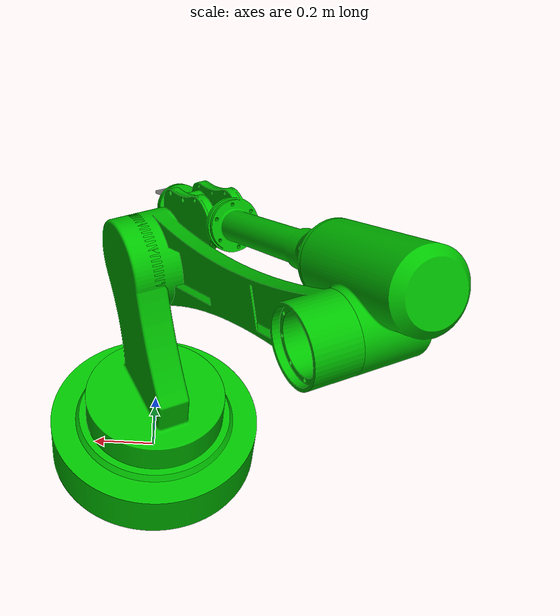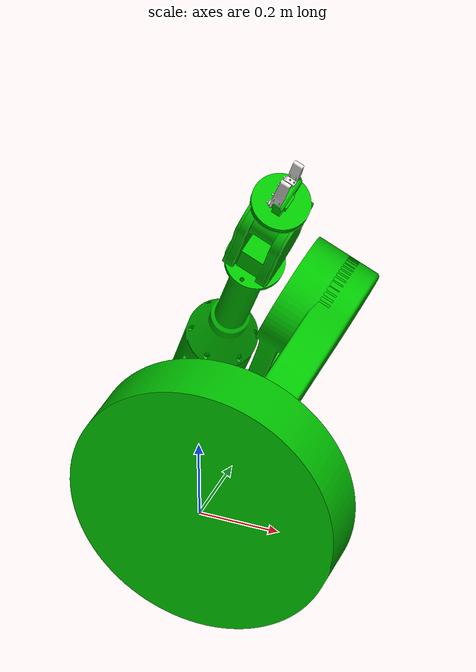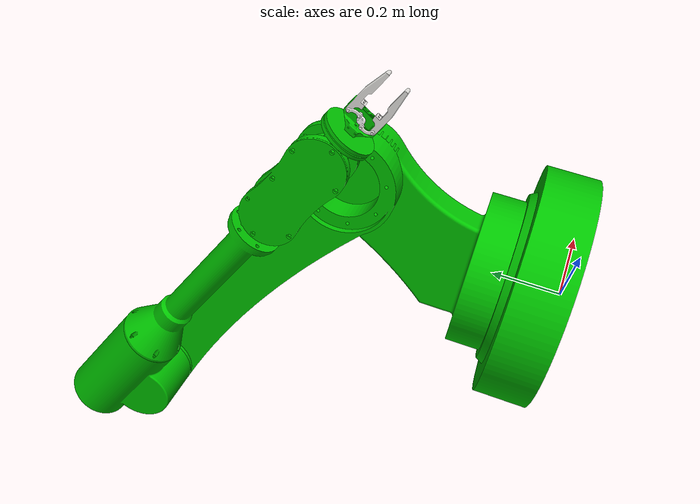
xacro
<?xml version="1.0"?>
<robot xmlns:xacro="http://www.ros.org/wiki/xacro" name="Assem1">

  <!-- Materials (shared across all assemblies) -->
  <material name="Steel">
    <color rgba="0.000 0.753 0.000 1.0"/>
  </material>
  <material name="Generico">
    <color rgba="0.878 0.875 0.859 1.0"/>
  </material>
  <material name="material">
    <color rgba="0.961 0.961 0.965 1.0"/>
  </material>

  <!-- Assembly includes -->
  <xacro:include filename="$(find Assem1_description)/urdf/assemblies/griper.urdf.xacro"/>
  <xacro:include filename="$(find Assem1_description)/urdf/assemblies/Assem1.urdf.xacro"/>

  <!-- Instantiate assemblies -->
  <xacro:griper prefix=""/>
  <xacro:Assem1 prefix=""/>

  <!-- Mount joints (cross-assembly connections) -->
  <!-- These define how assemblies connect to each other. -->
  <!-- When swapping a dummy assembly with a real part, -->
  <!-- update the include + macro call above, and adjust -->
  <!-- parent/child link names in the mount joint below. -->

  <joint name="griper_joint" type="fixed">
    <parent link="Part02"/>
    <child link="led_base"/>
    <origin xyz="-0.152521 0.007500 0.024300" rpy="3.141593 -0.000000 -1.570796"/>
  </joint>

</robot>

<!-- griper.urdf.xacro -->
<robot xmlns:xacro="http://www.ros.org/wiki/xacro" name="griper_macro">

  <xacro:macro name="griper" params="prefix">

    <!-- Links -->
    <link name="${prefix}led_base">
      <inertial>
        <origin xyz="0.014027 0.006699 0.016421" rpy="0 0 0"/>
        <mass value="0.303692"/>
        <inertia ixx="8.300206e-05" ixy="-6.874604e-06" ixz="5.194899e-06"
                 iyy="1.571638e-04" iyz="6.920922e-06" izz="1.945885e-04"/>
      </inertial>
      <visual>
        <origin xyz="0.000000 0.000000 0.000000" rpy="0 0 0"/>
        <geometry>
          <mesh filename="package://Assem1_description/meshes/griper/led_base.dae" scale="1 1 1"/>
        </geometry>
        <material name="Steel"/>
      </visual>
      <collision>
        <origin xyz="0.000000 0.000000 0.000000" rpy="0 0 0"/>
        <geometry>
          <mesh filename="package://Assem1_description/meshes/griper/led_base_collision.stl" scale="0.01 0.01 0.01"/>
        </geometry>
      </collision>
    </link>

    <link name="${prefix}servo_mount">
      <inertial>
        <origin xyz="-0.000000 0.002881 -0.000000" rpy="0 0 0"/>
        <mass value="0.012073"/>
        <inertia ixx="1.000000e-06" ixy="-7.046030e-14" ixz="-1.289899e-07"
                 iyy="1.000000e-06" iyz="2.433932e-14" izz="1.000000e-06"/>
      </inertial>
      <visual>
        <origin xyz="-0.010000 -0.024700 0.000000" rpy="0 0 0"/>
        <geometry>
          <mesh filename="package://Assem1_description/meshes/griper/servo_mount.dae" scale="1 1 1"/>
        </geometry>
        <material name="material"/>
      </visual>
      <collision>
        <origin xyz="-0.010000 -0.024700 0.000000" rpy="0 0 0"/>
        <geometry>
          <mesh filename="package://Assem1_description/meshes/griper/servo_mount_collision.stl" scale="0.01 0.01 0.01"/>
        </geometry>
      </collision>
    </link>

    <link name="${prefix}right_pivot">
      <inertial>
        <origin xyz="0.006957 0.000935 0.002918" rpy="0 0 0"/>
        <mass value="0.003905"/>
        <inertia ixx="1.000000e-06" ixy="-2.936949e-08" ixz="1.136656e-08"
                 iyy="1.000000e-06" iyz="1.527936e-09" izz="1.000000e-06"/>
      </inertial>
      <visual>
        <origin xyz="0.015000 0.000000 0.002500" rpy="0 0 0"/>
        <geometry>
          <mesh filename="package://Assem1_description/meshes/griper/right_pivot.dae" scale="1 1 1"/>
        </geometry>
        <material name="Generico"/>
      </visual>
      <collision>
        <origin xyz="0.015000 0.000000 0.002500" rpy="0 0 0"/>
        <geometry>
          <mesh filename="package://Assem1_description/meshes/griper/right_pivot_collision.stl" scale="0.01 0.01 0.01"/>
        </geometry>
      </collision>
    </link>

    <link name="${prefix}left_pivot">
      <inertial>
        <origin xyz="0.006957 0.000935 -0.001082" rpy="0 0 0"/>
        <mass value="0.003905"/>
        <inertia ixx="1.000000e-06" ixy="-2.936949e-08" ixz="1.136656e-08"
                 iyy="1.000000e-06" iyz="1.527936e-09" izz="1.000000e-06"/>
      </inertial>
      <visual>
        <origin xyz="0.015000 -0.000000 -0.001500" rpy="0 0 0"/>
        <geometry>
          <mesh filename="package://Assem1_description/meshes/griper/left_pivot.dae" scale="1 1 1"/>
        </geometry>
        <material name="Generico"/>
      </visual>
      <collision>
        <origin xyz="0.015000 -0.000000 -0.001500" rpy="0 0 0"/>
        <geometry>
          <mesh filename="package://Assem1_description/meshes/griper/left_pivot_collision.stl" scale="0.01 0.01 0.01"/>
        </geometry>
      </collision>
    </link>

    <link name="${prefix}acc_right_gripper">
      <inertial>
        <origin xyz="-0.004275 0.067508 -0.017078" rpy="0 0 0"/>
        <mass value="0.053135"/>
        <inertia ixx="7.164639e-05" ixy="3.499711e-06" ixz="-2.373468e-07"
                 iyy="5.689930e-06" iyz="4.330788e-06" izz="7.017811e-05"/>
      </inertial>
      <visual>
        <origin xyz="0.004000 0.046200 -0.031700" rpy="0 0 0"/>
        <geometry>
          <mesh filename="package://Assem1_description/meshes/griper/acc_right_gripper.dae" scale="1 1 1"/>
        </geometry>
        <material name="Generico"/>
      </visual>
      <collision>
        <origin xyz="0.004000 0.046200 -0.031700" rpy="0 0 0"/>
        <geometry>
          <mesh filename="package://Assem1_description/meshes/griper/acc_right_gripper_collision.stl" scale="0.01 0.01 0.01"/>
        </geometry>
      </collision>
    </link>

    <link name="${prefix}acc_left_gripper">
      <inertial>
        <origin xyz="-0.004275 0.067508 0.013078" rpy="0 0 0"/>
        <mass value="0.053135"/>
        <inertia ixx="7.164639e-05" ixy="3.499711e-06" ixz="2.373468e-07"
                 iyy="5.689930e-06" iyz="-4.330788e-06" izz="7.017811e-05"/>
      </inertial>
      <visual>
        <origin xyz="0.004000 0.046200 0.027700" rpy="0 0 0"/>
        <geometry>
          <mesh filename="package://Assem1_description/meshes/griper/acc_left_gripper.dae" scale="1 1 1"/>
        </geometry>
        <material name="Generico"/>
      </visual>
      <collision>
        <origin xyz="0.004000 0.046200 0.027700" rpy="0 0 0"/>
        <geometry>
          <mesh filename="package://Assem1_description/meshes/griper/acc_left_gripper_collision.stl" scale="0.01 0.01 0.01"/>
        </geometry>
      </collision>
    </link>

    <!-- Joints (internal to assembly) -->
    <joint name="${prefix}servo_joint" type="revolute">
      <parent link="${prefix}led_base"/>
      <child link="${prefix}servo_mount"/>
      <origin xyz="0.007500 0.010100 0.032200" rpy="1.570796 -0.000000 0.070370"/>
      <axis xyz="0.000000 1.000000 0.000000"/>
      <limit lower="-1.012291" upper="0.000000" effort="100.0" velocity="1.00"/>
    </joint>

    <joint name="${prefix}left_pivot_joint2" type="continuous">
      <parent link="${prefix}servo_mount"/>
      <child link="${prefix}right_pivot"/>
      <origin xyz="0.010607 0.013300 0.010607" rpy="1.570796 0.263624 0.000000"/>
      <axis xyz="-0.000000 -0.000000 1.000000"/>
      <limit effort="100.0" velocity="1.00"/>
    </joint>

    <joint name="${prefix}right_pivot_joint2" type="continuous">
      <parent link="${prefix}servo_mount"/>
      <child link="${prefix}left_pivot"/>
      <origin xyz="-0.010607 0.009300 -0.010607" rpy="-1.570796 -0.263625 -3.141593"/>
      <axis xyz="0.000000 0.000000 1.000000"/>
      <limit effort="100.0" velocity="1.00"/>
    </joint>

    <joint name="${prefix}left_pivot_joint1" type="continuous">
      <parent link="${prefix}right_pivot"/>
      <child link="${prefix}acc_right_gripper"/>
      <origin xyz="0.030000 0.000000 -0.000000" rpy="3.141593 0.000000 0.333994"/>
      <axis xyz="-0.000000 0.000000 -1.000000"/>
      <limit effort="100.0" velocity="1.00"/>
    </joint>

    <joint name="${prefix}right_pivot_joint1" type="continuous">
      <parent link="${prefix}left_pivot"/>
      <child link="${prefix}acc_left_gripper"/>
      <origin xyz="0.030000 -0.000000 0.000000" rpy="0.000000 -0.000000 0.333995"/>
      <axis xyz="0.000000 0.000000 1.000000"/>
      <limit effort="100.0" velocity="1.00"/>
    </joint>

    <!-- ROS 2 control: generated generic system -->
    <ros2_control name="${prefix}griper_system" type="system">
      <hardware>
        <plugin>mock_components/GenericSystem</plugin>
        <param name="cmd_topic">sim/griper_system/cmd</param>
        <param name="state_topic">sim/griper_system/state</param>
      </hardware>

      <joint name="${prefix}left_pivot_joint1">
        <state_interface name="position">
          <param name="initial_value">0.0</param>
        </state_interface>
        <state_interface name="velocity"/>
        <state_interface name="effort"/>
      </joint>
      <joint name="${prefix}left_pivot_joint2">
        <state_interface name="position">
          <param name="initial_value">0.0</param>
        </state_interface>
        <state_interface name="velocity"/>
        <state_interface name="effort"/>
      </joint>
      <joint name="${prefix}right_pivot_joint1">
        <state_interface name="position">
          <param name="initial_value">0.0</param>
        </state_interface>
        <state_interface name="velocity"/>
        <state_interface name="effort"/>
      </joint>
      <joint name="${prefix}right_pivot_joint2">
        <state_interface name="position">
          <param name="initial_value">0.0</param>
        </state_interface>
        <state_interface name="velocity"/>
        <state_interface name="effort"/>
      </joint>
      <joint name="${prefix}servo_joint">
        <command_interface name="position"/>
        <command_interface name="velocity"/>
        <state_interface name="position">
          <param name="initial_value">0.0</param>
        </state_interface>
        <state_interface name="velocity"/>
        <state_interface name="effort"/>
      </joint>
    </ros2_control>

  </xacro:macro>

</robot>

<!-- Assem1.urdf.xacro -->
<robot xmlns:xacro="http://www.ros.org/wiki/xacro" name="Assem1_macro">

  <xacro:macro name="Assem1" params="prefix">

    <!-- Links -->
    <link name="${prefix}base_link">
      <inertial>
        <origin xyz="0.000000 0.080883 0.000000" rpy="0 0 0"/>
        <mass value="458.518628"/>
        <inertia ixx="1.383314e+01" ixy="3.228896e-17" ixz="2.339482e-14"
                 iyy="2.563791e+01" iyz="1.478321e-15" izz="1.383314e+01"/>
      </inertial>
      <visual>
        <origin xyz="0.000000 0.000000 0.000000" rpy="0 0 0"/>
        <geometry>
          <mesh filename="package://Assem1_description/meshes/Assem1/base_link.dae" scale="1 1 1"/>
        </geometry>
        <material name="Steel"/>
      </visual>
      <collision>
        <origin xyz="0.000000 0.000000 0.000000" rpy="0 0 0"/>
        <geometry>
          <mesh filename="package://Assem1_description/meshes/Assem1/base_link_collision.stl" scale="0.01 0.01 0.01"/>
        </geometry>
      </collision>
    </link>

    <link name="${prefix}Base0">
      <inertial>
        <origin xyz="0.049736 0.190786 -0.001303" rpy="0 0 0"/>
        <mass value="239.695814"/>
        <inertia ixx="9.415739e+00" ixy="-3.081859e+00" ixz="4.692144e-02"
                 iyy="5.456557e+00" iyz="9.346255e-02" izz="1.153565e+01"/>
      </inertial>
      <visual>
        <origin xyz="0.000000 0.000000 0.000000" rpy="0 0 0"/>
        <geometry>
          <mesh filename="package://Assem1_description/meshes/Assem1/Base0.dae" scale="1 1 1"/>
        </geometry>
        <material name="Steel"/>
      </visual>
      <collision>
        <origin xyz="0.000000 0.000000 0.000000" rpy="0 0 0"/>
        <geometry>
          <mesh filename="package://Assem1_description/meshes/Assem1/Base0_collision.stl" scale="0.01 0.01 0.01"/>
        </geometry>
      </collision>
    </link>

    <link name="${prefix}Arm01">
      <inertial>
        <origin xyz="0.053529 0.366854 -0.000002" rpy="0 0 0"/>
        <mass value="68.994369"/>
        <inertia ixx="1.074135e+01" ixy="-1.111681e-01" ixz="-1.230563e-06"
                 iyy="4.476331e-01" iyz="3.364830e-05" izz="1.039438e+01"/>
      </inertial>
      <visual>
        <origin xyz="-0.020000 1.000000 -0.000000" rpy="0 0 0"/>
        <geometry>
          <mesh filename="package://Assem1_description/meshes/Assem1/Arm01.dae" scale="1 1 1"/>
        </geometry>
        <material name="Steel"/>
      </visual>
      <collision>
        <origin xyz="-0.020000 1.000000 -0.000000" rpy="0 0 0"/>
        <geometry>
          <mesh filename="package://Assem1_description/meshes/Assem1/Arm01_collision.stl" scale="0.01 0.01 0.01"/>
        </geometry>
      </collision>
    </link>

    <link name="${prefix}Arm02">
      <inertial>
        <origin xyz="-0.002051 0.071594 0.110143" rpy="0 0 0"/>
        <mass value="122.591597"/>
        <inertia ixx="9.697336e-01" ixy="7.134262e-03" ixz="2.475546e-03"
                 iyy="1.599893e+00" iyz="-1.000127e-01" izz="1.865600e+00"/>
      </inertial>
      <visual>
        <origin xyz="-0.177000 0.100000 0.120000" rpy="0 0 0"/>
        <geometry>
          <mesh filename="package://Assem1_description/meshes/Assem1/Arm02.dae" scale="1 1 1"/>
        </geometry>
        <material name="Steel"/>
      </visual>
      <collision>
        <origin xyz="-0.177000 0.100000 0.120000" rpy="0 0 0"/>
        <geometry>
          <mesh filename="package://Assem1_description/meshes/Assem1/Arm02_collision.stl" scale="0.01 0.01 0.01"/>
        </geometry>
      </collision>
    </link>

    <link name="${prefix}for_arm_group">
      <inertial>
        <origin xyz="0.465627 -0.000033 -0.000000" rpy="0 0 0"/>
        <mass value="76.866253"/>
        <inertia ixx="2.134041e-01" ixy="9.151683e-04" ixz="-1.210196e-05"
                 iyy="7.730913e+00" iyz="-1.254132e-06" izz="7.717249e+00"/>
      </inertial>
      <visual>
        <origin xyz="-0.367000 -0.000000 0.000000" rpy="0 0 0"/>
        <geometry>
          <mesh filename="package://Assem1_description/meshes/Assem1/for_arm_group.dae" scale="1 1 1"/>
        </geometry>
        <material name="Steel"/>
      </visual>
      <collision>
        <origin xyz="-0.367000 -0.000000 0.000000" rpy="0 0 0"/>
        <geometry>
          <mesh filename="package://Assem1_description/meshes/Assem1/for_arm_group_collision.stl" scale="0.01 0.01 0.01"/>
        </geometry>
      </collision>
    </link>

    <link name="${prefix}Part02">
      <inertial>
        <origin xyz="-0.055298 0.000000 -0.000000" rpy="0 0 0"/>
        <mass value="8.277042"/>
        <inertia ixx="1.609093e-02" ixy="-6.388571e-13" ixz="-2.432409e-12"
                 iyy="3.044161e-02" iyz="-6.667105e-23" izz="3.383062e-02"/>
      </inertial>
      <visual>
        <origin xyz="-0.117721 -0.000000 0.000000" rpy="0 0 0"/>
        <geometry>
          <mesh filename="package://Assem1_description/meshes/Assem1/Part02.dae" scale="1 1 1"/>
        </geometry>
        <material name="Steel"/>
      </visual>
      <collision>
        <origin xyz="-0.117721 -0.000000 0.000000" rpy="0 0 0"/>
        <geometry>
          <mesh filename="package://Assem1_description/meshes/Assem1/Part02_collision.stl" scale="0.01 0.01 0.01"/>
        </geometry>
      </collision>
    </link>

    <!-- Joints (internal to assembly) -->
    <joint name="${prefix}Revolute_1" type="continuous">
      <parent link="${prefix}base_link"/>
      <child link="${prefix}Base0"/>
      <origin xyz="0.000000 0.170000 0.000000" rpy="-0.000000 -1.134464 -0.000000"/>
      <axis xyz="-0.000000 1.000000 -0.000000"/>
      <limit effort="100.0" velocity="1.00"/>
    </joint>

    <joint name="${prefix}Revolute_2" type="continuous">
      <parent link="${prefix}Base0"/>
      <child link="${prefix}Arm01"/>
      <origin xyz="0.200000 0.490000 0.030000" rpy="1.047198 -1.570796 0.000000"/>
      <axis xyz="1.000000 0.000000 0.000000"/>
      <limit effort="100.0" velocity="1.00"/>
    </joint>

    <joint name="${prefix}Revolute3" type="continuous">
      <parent link="${prefix}Arm01"/>
      <child link="${prefix}Arm02"/>
      <origin xyz="0.100000 1.000000 -0.000000" rpy="-1.570796 -0.000000 -1.570796"/>
      <axis xyz="-0.000000 -0.000000 1.000000"/>
      <limit effort="100.0" velocity="1.00"/>
    </joint>

    <joint name="${prefix}Revolute4" type="continuous">
      <parent link="${prefix}Arm02"/>
      <child link="${prefix}for_arm_group"/>
      <origin xyz="0.189000 0.100000 0.120000" rpy="-0.000000 0.000000 -0.000000"/>
      <axis xyz="-1.000000 0.000000 0.000000"/>
      <limit effort="100.0" velocity="1.00"/>
    </joint>

    <joint name="${prefix}Revolute6" type="revolute">
      <parent link="${prefix}for_arm_group"/>
      <child link="${prefix}Part02"/>
      <origin xyz="0.899000 -0.000000 -0.000000" rpy="-3.141593 -0.000000 3.141593"/>
      <axis xyz="-0.000000 0.000000 1.000000"/>
      <limit lower="-1.745329" upper="1.745329" effort="100.0" velocity="1.00"/>
    </joint>

    <!-- ROS 2 control: generated generic system -->
    <ros2_control name="${prefix}Assem1_system" type="system">
      <hardware>
        <plugin>mock_components/GenericSystem</plugin>
        <param name="cmd_topic">sim/Assem1_system/cmd</param>
        <param name="state_topic">sim/Assem1_system/state</param>
      </hardware>

      <joint name="${prefix}Revolute3">
        <command_interface name="position"/>
        <command_interface name="velocity"/>
        <state_interface name="position">
          <param name="initial_value">0.0</param>
        </state_interface>
        <state_interface name="velocity"/>
        <state_interface name="effort"/>
      </joint>
      <joint name="${prefix}Revolute4">
        <command_interface name="position"/>
        <command_interface name="velocity"/>
        <state_interface name="position">
          <param name="initial_value">0.0</param>
        </state_interface>
        <state_interface name="velocity"/>
        <state_interface name="effort"/>
      </joint>
      <joint name="${prefix}Revolute6">
        <command_interface name="position"/>
        <command_interface name="velocity"/>
        <state_interface name="position">
          <param name="initial_value">0.0</param>
        </state_interface>
        <state_interface name="velocity"/>
        <state_interface name="effort"/>
      </joint>
      <joint name="${prefix}Revolute_1">
        <command_interface name="position"/>
        <command_interface name="velocity"/>
        <state_interface name="position">
          <param name="initial_value">0.0</param>
        </state_interface>
        <state_interface name="velocity"/>
        <state_interface name="effort"/>
      </joint>
      <joint name="${prefix}Revolute_2">
        <command_interface name="position"/>
        <command_interface name="velocity"/>
        <state_interface name="position">
          <param name="initial_value">0.0</param>
        </state_interface>
        <state_interface name="velocity"/>
        <state_interface name="effort"/>
      </joint>
    </ros2_control>

  </xacro:macro>

</robot>
